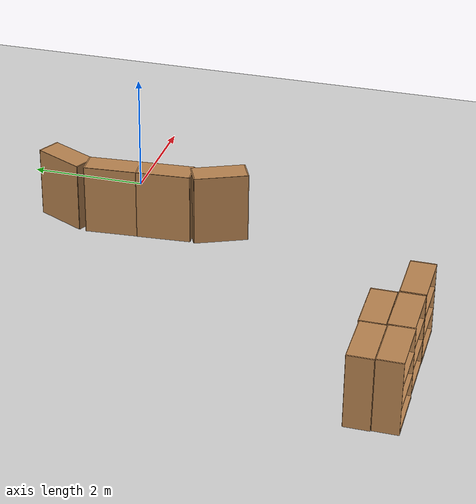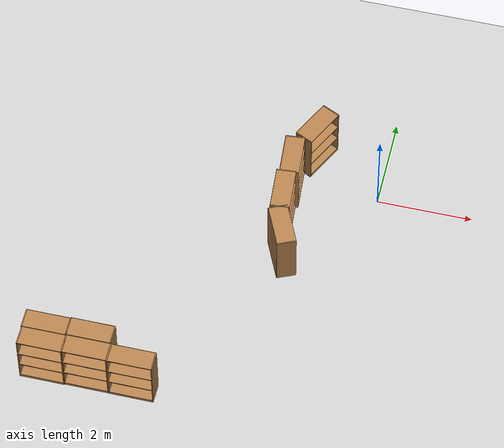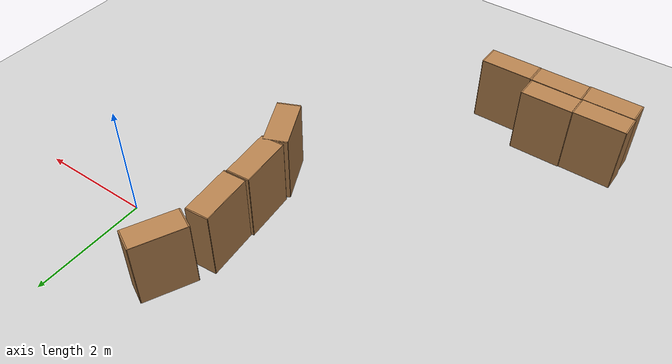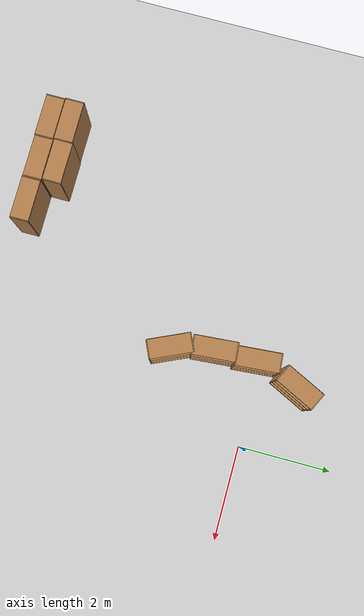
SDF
<sdf version="1.6">
 <world name="default">
  <light name="sun" type="directional">
   <pose>0 0 10 0 -0 0</pose>
   <diffuse>0.8 0.8 0.8 1</diffuse>
   <specular>0.1 0.1 0.1 1</specular>
   <attenuation>
    <range>1000</range>
    <constant>0.9</constant>
    <linear>0.01</linear>
    <quadratic>0.001</quadratic>
   </attenuation>
   <direction>-0.5 0.5 -1</direction>
  </light>
  <model name="ground_plane">
   <static>1</static>
   <link name="link">
    <collision name="collision">
     <geometry><plane><normal>0 0 1</normal><size>100 100</size></plane></geometry>
     <surface><friction><ode><mu>100</mu><mu2>50</mu2></ode></friction></surface>
    </collision>
    <visual name="visual">
     <cast_shadows>0</cast_shadows>
     <geometry><plane><normal>0 0 1</normal><size>100 100</size></plane></geometry>
     <material>
      <script><uri>file://media/materials/scripts/gazebo.material</uri><name>Gazebo/Grey</name></script>
     </material>
    </visual>
   </link>
  </model>
  <gravity>0 0 -9.8</gravity>
  <magnetic_field>6e-06 2.3e-05 -4.2e-05</magnetic_field>
  <atmosphere type="adiabatic"/>
  <physics name="default_physics" default="0" type="ode">
   <max_step_size>0.001</max_step_size>
   <real_time_factor>1</real_time_factor>
   <real_time_update_rate>1000</real_time_update_rate>
  </physics>
  <scene><ambient>0.4 0.4 0.4 1</ambient><background>0.7 0.7 0.7 1</background><shadows>1</shadows></scene>
  <spherical_coordinates>
   <surface_model>EARTH_WGS84</surface_model>
   <latitude_deg>0</latitude_deg>
   <longitude_deg>0</longitude_deg>
   <elevation>0</elevation>
   <heading_deg>0</heading_deg>
  </spherical_coordinates>
  <audio><device>default</device></audio>
  <model name="bookshelf_clone">
   <static>1</static>
   <link name="link">
    <inertial><mass>1</mass></inertial>
    <collision name="back">
     <pose>0 0.005 0.6 0 -0 0</pose>
     <geometry><box><size>0.9 0.01 1.2</size></box></geometry>
    </collision>
    <visual name="visual1">
     <pose>0 0.005 0.6 0 -0 0</pose>
     <geometry><box><size>0.9 0.01 1.2</size></box></geometry>
     <material>
      <script><uri>file://media/materials/scripts/gazebo.material</uri><name>Gazebo/Wood</name></script>
     </material>
    </visual>
    <collision name="left_side">
     <pose>0.45 -0.195 0.6 0 -0 0</pose>
     <geometry><box><size>0.02 0.4 1.2</size></box></geometry>
    </collision>
    <visual name="visual2">
     <pose>0.45 -0.195 0.6 0 -0 0</pose>
     <geometry><box><size>0.02 0.4 1.2</size></box></geometry>
     <material>
      <script><uri>file://media/materials/scripts/gazebo.material</uri><name>Gazebo/Wood</name></script>
     </material>
    </visual>
    <collision name="right_side">
     <pose>-0.45 -0.195 0.6 0 -0 0</pose>
     <geometry><box><size>0.02 0.4 1.2</size></box></geometry>
    </collision>
    <visual name="visual3">
     <pose>-0.45 -0.195 0.6 0 -0 0</pose>
     <geometry><box><size>0.02 0.4 1.2</size></box></geometry>
     <material>
      <script><uri>file://media/materials/scripts/gazebo.material</uri><name>Gazebo/Wood</name></script>
     </material>
    </visual>
    <collision name="bottom">
     <pose>0 -0.195 0.03 0 -0 0</pose>
     <geometry><box><size>0.88 0.4 0.06</size></box></geometry>
    </collision>
    <visual name="visual4">
     <pose>0 -0.195 0.03 0 -0 0</pose>
     <geometry><box><size>0.88 0.4 0.06</size></box></geometry>
     <material>
      <script><uri>file://media/materials/scripts/gazebo.material</uri><name>Gazebo/Wood</name></script>
     </material>
    </visual>
    <collision name="top">
     <pose>0 -0.195 1.19 0 -0 0</pose>
     <geometry><box><size>0.88 0.4 0.02</size></box></geometry>
    </collision>
    <visual name="visual5">
     <pose>0 -0.195 1.19 0 -0 0</pose>
     <geometry><box><size>0.88 0.4 0.02</size></box></geometry>
     <material>
      <script><uri>file://media/materials/scripts/gazebo.material</uri><name>Gazebo/Wood</name></script>
     </material>
    </visual>
    <collision name="low_shelf">
     <pose>0 -0.195 0.43 0 -0 0</pose>
     <geometry><box><size>0.88 0.4 0.02</size></box></geometry>
    </collision>
    <visual name="visual6">
     <pose>0 -0.195 0.43 0 -0 0</pose>
     <geometry><box><size>0.88 0.4 0.02</size></box></geometry>
     <material>
      <script><uri>file://media/materials/scripts/gazebo.material</uri><name>Gazebo/Wood</name></script>
     </material>
    </visual>
    <collision name="high_shelf">
     <pose>0 -0.195 0.8 0 -0 0</pose>
     <geometry><box><size>0.88 0.4 0.02</size></box></geometry>
    </collision>
    <visual name="visual7">
     <pose>0 -0.195 0.8 0 -0 0</pose>
     <geometry><box><size>0.88 0.4 0.02</size></box></geometry>
     <material>
      <script><uri>file://media/materials/scripts/gazebo.material</uri><name>Gazebo/Wood</name></script>
     </material>
    </visual>
   </link>
   <pose>-5.58377 -5.40152 0 0 -0 0</pose>
  </model>
  <model name="bookshelf_clone_0">
   <static>1</static>
   <link name="link">
    <inertial><mass>1</mass></inertial>
    <collision name="back">
     <pose>0 0.005 0.6 0 -0 0</pose>
     <geometry><box><size>0.9 0.01 1.2</size></box></geometry>
    </collision>
    <visual name="visual1">
     <pose>0 0.005 0.6 0 -0 0</pose>
     <geometry><box><size>0.9 0.01 1.2</size></box></geometry>
     <material>
      <script><uri>file://media/materials/scripts/gazebo.material</uri><name>Gazebo/Wood</name></script>
     </material>
    </visual>
    <collision name="left_side">
     <pose>0.45 -0.195 0.6 0 -0 0</pose>
     <geometry><box><size>0.02 0.4 1.2</size></box></geometry>
    </collision>
    <visual name="visual2">
     <pose>0.45 -0.195 0.6 0 -0 0</pose>
     <geometry><box><size>0.02 0.4 1.2</size></box></geometry>
     <material>
      <script><uri>file://media/materials/scripts/gazebo.material</uri><name>Gazebo/Wood</name></script>
     </material>
    </visual>
    <collision name="right_side">
     <pose>-0.45 -0.195 0.6 0 -0 0</pose>
     <geometry><box><size>0.02 0.4 1.2</size></box></geometry>
    </collision>
    <visual name="visual3">
     <pose>-0.45 -0.195 0.6 0 -0 0</pose>
     <geometry><box><size>0.02 0.4 1.2</size></box></geometry>
     <material>
      <script><uri>file://media/materials/scripts/gazebo.material</uri><name>Gazebo/Wood</name></script>
     </material>
    </visual>
    <collision name="bottom">
     <pose>0 -0.195 0.03 0 -0 0</pose>
     <geometry><box><size>0.88 0.4 0.06</size></box></geometry>
    </collision>
    <visual name="visual4">
     <pose>0 -0.195 0.03 0 -0 0</pose>
     <geometry><box><size>0.88 0.4 0.06</size></box></geometry>
     <material>
      <script><uri>file://media/materials/scripts/gazebo.material</uri><name>Gazebo/Wood</name></script>
     </material>
    </visual>
    <collision name="top">
     <pose>0 -0.195 1.19 0 -0 0</pose>
     <geometry><box><size>0.88 0.4 0.02</size></box></geometry>
    </collision>
    <visual name="visual5">
     <pose>0 -0.195 1.19 0 -0 0</pose>
     <geometry><box><size>0.88 0.4 0.02</size></box></geometry>
     <material>
      <script><uri>file://media/materials/scripts/gazebo.material</uri><name>Gazebo/Wood</name></script>
     </material>
    </visual>
    <collision name="low_shelf">
     <pose>0 -0.195 0.43 0 -0 0</pose>
     <geometry><box><size>0.88 0.4 0.02</size></box></geometry>
    </collision>
    <visual name="visual6">
     <pose>0 -0.195 0.43 0 -0 0</pose>
     <geometry><box><size>0.88 0.4 0.02</size></box></geometry>
     <material>
      <script><uri>file://media/materials/scripts/gazebo.material</uri><name>Gazebo/Wood</name></script>
     </material>
    </visual>
    <collision name="high_shelf">
     <pose>0 -0.195 0.8 0 -0 0</pose>
     <geometry><box><size>0.88 0.4 0.02</size></box></geometry>
    </collision>
    <visual name="visual7">
     <pose>0 -0.195 0.8 0 -0 0</pose>
     <geometry><box><size>0.88 0.4 0.02</size></box></geometry>
     <material>
      <script><uri>file://media/materials/scripts/gazebo.material</uri><name>Gazebo/Wood</name></script>
     </material>
    </visual>
   </link>
   <pose>-4.67596 -5.39041 0 0 -0 0</pose>
  </model>
  <model name="bookshelf_clone_1">
   <static>1</static>
   <link name="link">
    <inertial><mass>1</mass></inertial>
    <collision name="back">
     <pose>0 0.005 0.6 0 -0 0</pose>
     <geometry><box><size>0.9 0.01 1.2</size></box></geometry>
    </collision>
    <visual name="visual1">
     <pose>0 0.005 0.6 0 -0 0</pose>
     <geometry><box><size>0.9 0.01 1.2</size></box></geometry>
     <material>
      <script><uri>file://media/materials/scripts/gazebo.material</uri><name>Gazebo/Wood</name></script>
     </material>
    </visual>
    <collision name="left_side">
     <pose>0.45 -0.195 0.6 0 -0 0</pose>
     <geometry><box><size>0.02 0.4 1.2</size></box></geometry>
    </collision>
    <visual name="visual2">
     <pose>0.45 -0.195 0.6 0 -0 0</pose>
     <geometry><box><size>0.02 0.4 1.2</size></box></geometry>
     <material>
      <script><uri>file://media/materials/scripts/gazebo.material</uri><name>Gazebo/Wood</name></script>
     </material>
    </visual>
    <collision name="right_side">
     <pose>-0.45 -0.195 0.6 0 -0 0</pose>
     <geometry><box><size>0.02 0.4 1.2</size></box></geometry>
    </collision>
    <visual name="visual3">
     <pose>-0.45 -0.195 0.6 0 -0 0</pose>
     <geometry><box><size>0.02 0.4 1.2</size></box></geometry>
     <material>
      <script><uri>file://media/materials/scripts/gazebo.material</uri><name>Gazebo/Wood</name></script>
     </material>
    </visual>
    <collision name="bottom">
     <pose>0 -0.195 0.03 0 -0 0</pose>
     <geometry><box><size>0.88 0.4 0.06</size></box></geometry>
    </collision>
    <visual name="visual4">
     <pose>0 -0.195 0.03 0 -0 0</pose>
     <geometry><box><size>0.88 0.4 0.06</size></box></geometry>
     <material>
      <script><uri>file://media/materials/scripts/gazebo.material</uri><name>Gazebo/Wood</name></script>
     </material>
    </visual>
    <collision name="top">
     <pose>0 -0.195 1.19 0 -0 0</pose>
     <geometry><box><size>0.88 0.4 0.02</size></box></geometry>
    </collision>
    <visual name="visual5">
     <pose>0 -0.195 1.19 0 -0 0</pose>
     <geometry><box><size>0.88 0.4 0.02</size></box></geometry>
     <material>
      <script><uri>file://media/materials/scripts/gazebo.material</uri><name>Gazebo/Wood</name></script>
     </material>
    </visual>
    <collision name="low_shelf">
     <pose>0 -0.195 0.43 0 -0 0</pose>
     <geometry><box><size>0.88 0.4 0.02</size></box></geometry>
    </collision>
    <visual name="visual6">
     <pose>0 -0.195 0.43 0 -0 0</pose>
     <geometry><box><size>0.88 0.4 0.02</size></box></geometry>
     <material>
      <script><uri>file://media/materials/scripts/gazebo.material</uri><name>Gazebo/Wood</name></script>
     </material>
    </visual>
    <collision name="high_shelf">
     <pose>0 -0.195 0.8 0 -0 0</pose>
     <geometry><box><size>0.88 0.4 0.02</size></box></geometry>
    </collision>
    <visual name="visual7">
     <pose>0 -0.195 0.8 0 -0 0</pose>
     <geometry><box><size>0.88 0.4 0.02</size></box></geometry>
     <material>
      <script><uri>file://media/materials/scripts/gazebo.material</uri><name>Gazebo/Wood</name></script>
     </material>
    </visual>
   </link>
   <pose>-5.60077 -4.99106 0 0 -0 0</pose>
  </model>
  <model name="bookshelf_clone_2">
   <static>1</static>
   <link name="link">
    <inertial><mass>1</mass></inertial>
    <collision name="back">
     <pose>0 0.005 0.6 0 -0 0</pose>
     <geometry><box><size>0.9 0.01 1.2</size></box></geometry>
    </collision>
    <visual name="visual1">
     <pose>0 0.005 0.6 0 -0 0</pose>
     <geometry><box><size>0.9 0.01 1.2</size></box></geometry>
     <material>
      <script><uri>file://media/materials/scripts/gazebo.material</uri><name>Gazebo/Wood</name></script>
     </material>
    </visual>
    <collision name="left_side">
     <pose>0.45 -0.195 0.6 0 -0 0</pose>
     <geometry><box><size>0.02 0.4 1.2</size></box></geometry>
    </collision>
    <visual name="visual2">
     <pose>0.45 -0.195 0.6 0 -0 0</pose>
     <geometry><box><size>0.02 0.4 1.2</size></box></geometry>
     <material>
      <script><uri>file://media/materials/scripts/gazebo.material</uri><name>Gazebo/Wood</name></script>
     </material>
    </visual>
    <collision name="right_side">
     <pose>-0.45 -0.195 0.6 0 -0 0</pose>
     <geometry><box><size>0.02 0.4 1.2</size></box></geometry>
    </collision>
    <visual name="visual3">
     <pose>-0.45 -0.195 0.6 0 -0 0</pose>
     <geometry><box><size>0.02 0.4 1.2</size></box></geometry>
     <material>
      <script><uri>file://media/materials/scripts/gazebo.material</uri><name>Gazebo/Wood</name></script>
     </material>
    </visual>
    <collision name="bottom">
     <pose>0 -0.195 0.03 0 -0 0</pose>
     <geometry><box><size>0.88 0.4 0.06</size></box></geometry>
    </collision>
    <visual name="visual4">
     <pose>0 -0.195 0.03 0 -0 0</pose>
     <geometry><box><size>0.88 0.4 0.06</size></box></geometry>
     <material>
      <script><uri>file://media/materials/scripts/gazebo.material</uri><name>Gazebo/Wood</name></script>
     </material>
    </visual>
    <collision name="top">
     <pose>0 -0.195 1.19 0 -0 0</pose>
     <geometry><box><size>0.88 0.4 0.02</size></box></geometry>
    </collision>
    <visual name="visual5">
     <pose>0 -0.195 1.19 0 -0 0</pose>
     <geometry><box><size>0.88 0.4 0.02</size></box></geometry>
     <material>
      <script><uri>file://media/materials/scripts/gazebo.material</uri><name>Gazebo/Wood</name></script>
     </material>
    </visual>
    <collision name="low_shelf">
     <pose>0 -0.195 0.43 0 -0 0</pose>
     <geometry><box><size>0.88 0.4 0.02</size></box></geometry>
    </collision>
    <visual name="visual6">
     <pose>0 -0.195 0.43 0 -0 0</pose>
     <geometry><box><size>0.88 0.4 0.02</size></box></geometry>
     <material>
      <script><uri>file://media/materials/scripts/gazebo.material</uri><name>Gazebo/Wood</name></script>
     </material>
    </visual>
    <collision name="high_shelf">
     <pose>0 -0.195 0.8 0 -0 0</pose>
     <geometry><box><size>0.88 0.4 0.02</size></box></geometry>
    </collision>
    <visual name="visual7">
     <pose>0 -0.195 0.8 0 -0 0</pose>
     <geometry><box><size>0.88 0.4 0.02</size></box></geometry>
     <material>
      <script><uri>file://media/materials/scripts/gazebo.material</uri><name>Gazebo/Wood</name></script>
     </material>
    </visual>
   </link>
   <pose>-3.75928 -5.39438 0 0 -0 0</pose>
  </model>
  <model name="bookshelf_clone_3">
   <static>1</static>
   <link name="link">
    <inertial><mass>1</mass></inertial>
    <collision name="back">
     <pose>0 0.005 0.6 0 -0 0</pose>
     <geometry><box><size>0.9 0.01 1.2</size></box></geometry>
    </collision>
    <visual name="visual1">
     <pose>0 0.005 0.6 0 -0 0</pose>
     <geometry><box><size>0.9 0.01 1.2</size></box></geometry>
     <material>
      <script><uri>file://media/materials/scripts/gazebo.material</uri><name>Gazebo/Wood</name></script>
     </material>
    </visual>
    <collision name="left_side">
     <pose>0.45 -0.195 0.6 0 -0 0</pose>
     <geometry><box><size>0.02 0.4 1.2</size></box></geometry>
    </collision>
    <visual name="visual2">
     <pose>0.45 -0.195 0.6 0 -0 0</pose>
     <geometry><box><size>0.02 0.4 1.2</size></box></geometry>
     <material>
      <script><uri>file://media/materials/scripts/gazebo.material</uri><name>Gazebo/Wood</name></script>
     </material>
    </visual>
    <collision name="right_side">
     <pose>-0.45 -0.195 0.6 0 -0 0</pose>
     <geometry><box><size>0.02 0.4 1.2</size></box></geometry>
    </collision>
    <visual name="visual3">
     <pose>-0.45 -0.195 0.6 0 -0 0</pose>
     <geometry><box><size>0.02 0.4 1.2</size></box></geometry>
     <material>
      <script><uri>file://media/materials/scripts/gazebo.material</uri><name>Gazebo/Wood</name></script>
     </material>
    </visual>
    <collision name="bottom">
     <pose>0 -0.195 0.03 0 -0 0</pose>
     <geometry><box><size>0.88 0.4 0.06</size></box></geometry>
    </collision>
    <visual name="visual4">
     <pose>0 -0.195 0.03 0 -0 0</pose>
     <geometry><box><size>0.88 0.4 0.06</size></box></geometry>
     <material>
      <script><uri>file://media/materials/scripts/gazebo.material</uri><name>Gazebo/Wood</name></script>
     </material>
    </visual>
    <collision name="top">
     <pose>0 -0.195 1.19 0 -0 0</pose>
     <geometry><box><size>0.88 0.4 0.02</size></box></geometry>
    </collision>
    <visual name="visual5">
     <pose>0 -0.195 1.19 0 -0 0</pose>
     <geometry><box><size>0.88 0.4 0.02</size></box></geometry>
     <material>
      <script><uri>file://media/materials/scripts/gazebo.material</uri><name>Gazebo/Wood</name></script>
     </material>
    </visual>
    <collision name="low_shelf">
     <pose>0 -0.195 0.43 0 -0 0</pose>
     <geometry><box><size>0.88 0.4 0.02</size></box></geometry>
    </collision>
    <visual name="visual6">
     <pose>0 -0.195 0.43 0 -0 0</pose>
     <geometry><box><size>0.88 0.4 0.02</size></box></geometry>
     <material>
      <script><uri>file://media/materials/scripts/gazebo.material</uri><name>Gazebo/Wood</name></script>
     </material>
    </visual>
    <collision name="high_shelf">
     <pose>0 -0.195 0.8 0 -0 0</pose>
     <geometry><box><size>0.88 0.4 0.02</size></box></geometry>
    </collision>
    <visual name="visual7">
     <pose>0 -0.195 0.8 0 -0 0</pose>
     <geometry><box><size>0.88 0.4 0.02</size></box></geometry>
     <material>
      <script><uri>file://media/materials/scripts/gazebo.material</uri><name>Gazebo/Wood</name></script>
     </material>
    </visual>
   </link>
   <pose>-4.69769 -4.97635 0 0 -0 0</pose>
  </model>
  <model name="bookshelf_clone_7">
   <static>1</static>
   <link name="link">
    <inertial><mass>1</mass></inertial>
    <collision name="back">
     <pose>0 0.005 0.6 0 -0 0</pose>
     <geometry><box><size>0.9 0.01 1.2</size></box></geometry>
    </collision>
    <visual name="visual1">
     <pose>0 0.005 0.6 0 -0 0</pose>
     <geometry><box><size>0.9 0.01 1.2</size></box></geometry>
     <material>
      <script><uri>file://media/materials/scripts/gazebo.material</uri><name>Gazebo/Wood</name></script>
     </material>
    </visual>
    <collision name="left_side">
     <pose>0.45 -0.195 0.6 0 -0 0</pose>
     <geometry><box><size>0.02 0.4 1.2</size></box></geometry>
    </collision>
    <visual name="visual2">
     <pose>0.45 -0.195 0.6 0 -0 0</pose>
     <geometry><box><size>0.02 0.4 1.2</size></box></geometry>
     <material>
      <script><uri>file://media/materials/scripts/gazebo.material</uri><name>Gazebo/Wood</name></script>
     </material>
    </visual>
    <collision name="right_side">
     <pose>-0.45 -0.195 0.6 0 -0 0</pose>
     <geometry><box><size>0.02 0.4 1.2</size></box></geometry>
    </collision>
    <visual name="visual3">
     <pose>-0.45 -0.195 0.6 0 -0 0</pose>
     <geometry><box><size>0.02 0.4 1.2</size></box></geometry>
     <material>
      <script><uri>file://media/materials/scripts/gazebo.material</uri><name>Gazebo/Wood</name></script>
     </material>
    </visual>
    <collision name="bottom">
     <pose>0 -0.195 0.03 0 -0 0</pose>
     <geometry><box><size>0.88 0.4 0.06</size></box></geometry>
    </collision>
    <visual name="visual4">
     <pose>0 -0.195 0.03 0 -0 0</pose>
     <geometry><box><size>0.88 0.4 0.06</size></box></geometry>
     <material>
      <script><uri>file://media/materials/scripts/gazebo.material</uri><name>Gazebo/Wood</name></script>
     </material>
    </visual>
    <collision name="top">
     <pose>0 -0.195 1.19 0 -0 0</pose>
     <geometry><box><size>0.88 0.4 0.02</size></box></geometry>
    </collision>
    <visual name="visual5">
     <pose>0 -0.195 1.19 0 -0 0</pose>
     <geometry><box><size>0.88 0.4 0.02</size></box></geometry>
     <material>
      <script><uri>file://media/materials/scripts/gazebo.material</uri><name>Gazebo/Wood</name></script>
     </material>
    </visual>
    <collision name="low_shelf">
     <pose>0 -0.195 0.43 0 -0 0</pose>
     <geometry><box><size>0.88 0.4 0.02</size></box></geometry>
    </collision>
    <visual name="visual6">
     <pose>0 -0.195 0.43 0 -0 0</pose>
     <geometry><box><size>0.88 0.4 0.02</size></box></geometry>
     <material>
      <script><uri>file://media/materials/scripts/gazebo.material</uri><name>Gazebo/Wood</name></script>
     </material>
    </visual>
    <collision name="high_shelf">
     <pose>0 -0.195 0.8 0 -0 0</pose>
     <geometry><box><size>0.88 0.4 0.02</size></box></geometry>
    </collision>
    <visual name="visual7">
     <pose>0 -0.195 0.8 0 -0 0</pose>
     <geometry><box><size>0.88 0.4 0.02</size></box></geometry>
     <material>
      <script><uri>file://media/materials/scripts/gazebo.material</uri><name>Gazebo/Wood</name></script>
     </material>
    </visual>
   </link>
   <pose>-1.64433 0.887865 -0.001919 0 -0 1.11811</pose>
  </model>
  <model name="bookshelf_clone_7_clone">
   <static>1</static>
   <link name="link">
    <inertial><mass>1</mass></inertial>
    <collision name="back">
     <pose>0 0.005 0.6 0 -0 0</pose>
     <geometry><box><size>0.9 0.01 1.2</size></box></geometry>
    </collision>
    <visual name="visual1">
     <pose>0 0.005 0.6 0 -0 0</pose>
     <geometry><box><size>0.9 0.01 1.2</size></box></geometry>
     <material>
      <script><uri>file://media/materials/scripts/gazebo.material</uri><name>Gazebo/Wood</name></script>
     </material>
    </visual>
    <collision name="left_side">
     <pose>0.45 -0.195 0.6 0 -0 0</pose>
     <geometry><box><size>0.02 0.4 1.2</size></box></geometry>
    </collision>
    <visual name="visual2">
     <pose>0.45 -0.195 0.6 0 -0 0</pose>
     <geometry><box><size>0.02 0.4 1.2</size></box></geometry>
     <material>
      <script><uri>file://media/materials/scripts/gazebo.material</uri><name>Gazebo/Wood</name></script>
     </material>
    </visual>
    <collision name="right_side">
     <pose>-0.45 -0.195 0.6 0 -0 0</pose>
     <geometry><box><size>0.02 0.4 1.2</size></box></geometry>
    </collision>
    <visual name="visual3">
     <pose>-0.45 -0.195 0.6 0 -0 0</pose>
     <geometry><box><size>0.02 0.4 1.2</size></box></geometry>
     <material>
      <script><uri>file://media/materials/scripts/gazebo.material</uri><name>Gazebo/Wood</name></script>
     </material>
    </visual>
    <collision name="bottom">
     <pose>0 -0.195 0.03 0 -0 0</pose>
     <geometry><box><size>0.88 0.4 0.06</size></box></geometry>
    </collision>
    <visual name="visual4">
     <pose>0 -0.195 0.03 0 -0 0</pose>
     <geometry><box><size>0.88 0.4 0.06</size></box></geometry>
     <material>
      <script><uri>file://media/materials/scripts/gazebo.material</uri><name>Gazebo/Wood</name></script>
     </material>
    </visual>
    <collision name="top">
     <pose>0 -0.195 1.19 0 -0 0</pose>
     <geometry><box><size>0.88 0.4 0.02</size></box></geometry>
    </collision>
    <visual name="visual5">
     <pose>0 -0.195 1.19 0 -0 0</pose>
     <geometry><box><size>0.88 0.4 0.02</size></box></geometry>
     <material>
      <script><uri>file://media/materials/scripts/gazebo.material</uri><name>Gazebo/Wood</name></script>
     </material>
    </visual>
    <collision name="low_shelf">
     <pose>0 -0.195 0.43 0 -0 0</pose>
     <geometry><box><size>0.88 0.4 0.02</size></box></geometry>
    </collision>
    <visual name="visual6">
     <pose>0 -0.195 0.43 0 -0 0</pose>
     <geometry><box><size>0.88 0.4 0.02</size></box></geometry>
     <material>
      <script><uri>file://media/materials/scripts/gazebo.material</uri><name>Gazebo/Wood</name></script>
     </material>
    </visual>
    <collision name="high_shelf">
     <pose>0 -0.195 0.8 0 -0 0</pose>
     <geometry><box><size>0.88 0.4 0.02</size></box></geometry>
    </collision>
    <visual name="visual7">
     <pose>0 -0.195 0.8 0 -0 0</pose>
     <geometry><box><size>0.88 0.4 0.02</size></box></geometry>
     <material>
      <script><uri>file://media/materials/scripts/gazebo.material</uri><name>Gazebo/Wood</name></script>
     </material>
    </visual>
   </link>
   <pose>-1.98085 -0.155633 0.094879 0 -0 1.64995</pose>
  </model>
  <model name="bookshelf_clone_7_clone_0">
   <static>1</static>
   <link name="link">
    <inertial><mass>1</mass></inertial>
    <collision name="back">
     <pose>0 0.005 0.6 0 -0 0</pose>
     <geometry><box><size>0.9 0.01 1.2</size></box></geometry>
    </collision>
    <visual name="visual1">
     <pose>0 0.005 0.6 0 -0 0</pose>
     <geometry><box><size>0.9 0.01 1.2</size></box></geometry>
     <material>
      <script><uri>file://media/materials/scripts/gazebo.material</uri><name>Gazebo/Wood</name></script>
     </material>
    </visual>
    <collision name="left_side">
     <pose>0.45 -0.195 0.6 0 -0 0</pose>
     <geometry><box><size>0.02 0.4 1.2</size></box></geometry>
    </collision>
    <visual name="visual2">
     <pose>0.45 -0.195 0.6 0 -0 0</pose>
     <geometry><box><size>0.02 0.4 1.2</size></box></geometry>
     <material>
      <script><uri>file://media/materials/scripts/gazebo.material</uri><name>Gazebo/Wood</name></script>
     </material>
    </visual>
    <collision name="right_side">
     <pose>-0.45 -0.195 0.6 0 -0 0</pose>
     <geometry><box><size>0.02 0.4 1.2</size></box></geometry>
    </collision>
    <visual name="visual3">
     <pose>-0.45 -0.195 0.6 0 -0 0</pose>
     <geometry><box><size>0.02 0.4 1.2</size></box></geometry>
     <material>
      <script><uri>file://media/materials/scripts/gazebo.material</uri><name>Gazebo/Wood</name></script>
     </material>
    </visual>
    <collision name="bottom">
     <pose>0 -0.195 0.03 0 -0 0</pose>
     <geometry><box><size>0.88 0.4 0.06</size></box></geometry>
    </collision>
    <visual name="visual4">
     <pose>0 -0.195 0.03 0 -0 0</pose>
     <geometry><box><size>0.88 0.4 0.06</size></box></geometry>
     <material>
      <script><uri>file://media/materials/scripts/gazebo.material</uri><name>Gazebo/Wood</name></script>
     </material>
    </visual>
    <collision name="top">
     <pose>0 -0.195 1.19 0 -0 0</pose>
     <geometry><box><size>0.88 0.4 0.02</size></box></geometry>
    </collision>
    <visual name="visual5">
     <pose>0 -0.195 1.19 0 -0 0</pose>
     <geometry><box><size>0.88 0.4 0.02</size></box></geometry>
     <material>
      <script><uri>file://media/materials/scripts/gazebo.material</uri><name>Gazebo/Wood</name></script>
     </material>
    </visual>
    <collision name="low_shelf">
     <pose>0 -0.195 0.43 0 -0 0</pose>
     <geometry><box><size>0.88 0.4 0.02</size></box></geometry>
    </collision>
    <visual name="visual6">
     <pose>0 -0.195 0.43 0 -0 0</pose>
     <geometry><box><size>0.88 0.4 0.02</size></box></geometry>
     <material>
      <script><uri>file://media/materials/scripts/gazebo.material</uri><name>Gazebo/Wood</name></script>
     </material>
    </visual>
    <collision name="high_shelf">
     <pose>0 -0.195 0.8 0 -0 0</pose>
     <geometry><box><size>0.88 0.4 0.02</size></box></geometry>
    </collision>
    <visual name="visual7">
     <pose>0 -0.195 0.8 0 -0 0</pose>
     <geometry><box><size>0.88 0.4 0.02</size></box></geometry>
     <material>
      <script><uri>file://media/materials/scripts/gazebo.material</uri><name>Gazebo/Wood</name></script>
     </material>
    </visual>
   </link>
   <pose>-1.96461 -1.05445 0.124158 0 -0 1.64995</pose>
  </model>
  <model name="bookshelf_clone_7_clone_0_clone">
   <static>1</static>
   <link name="link">
    <inertial><mass>1</mass></inertial>
    <collision name="back">
     <pose>0 0.005 0.6 0 -0 0</pose>
     <geometry><box><size>0.9 0.01 1.2</size></box></geometry>
    </collision>
    <visual name="visual1">
     <pose>0 0.005 0.6 0 -0 0</pose>
     <geometry><box><size>0.9 0.01 1.2</size></box></geometry>
     <material>
      <script><uri>file://media/materials/scripts/gazebo.material</uri><name>Gazebo/Wood</name></script>
     </material>
    </visual>
    <collision name="left_side">
     <pose>0.45 -0.195 0.6 0 -0 0</pose>
     <geometry><box><size>0.02 0.4 1.2</size></box></geometry>
    </collision>
    <visual name="visual2">
     <pose>0.45 -0.195 0.6 0 -0 0</pose>
     <geometry><box><size>0.02 0.4 1.2</size></box></geometry>
     <material>
      <script><uri>file://media/materials/scripts/gazebo.material</uri><name>Gazebo/Wood</name></script>
     </material>
    </visual>
    <collision name="right_side">
     <pose>-0.45 -0.195 0.6 0 -0 0</pose>
     <geometry><box><size>0.02 0.4 1.2</size></box></geometry>
    </collision>
    <visual name="visual3">
     <pose>-0.45 -0.195 0.6 0 -0 0</pose>
     <geometry><box><size>0.02 0.4 1.2</size></box></geometry>
     <material>
      <script><uri>file://media/materials/scripts/gazebo.material</uri><name>Gazebo/Wood</name></script>
     </material>
    </visual>
    <collision name="bottom">
     <pose>0 -0.195 0.03 0 -0 0</pose>
     <geometry><box><size>0.88 0.4 0.06</size></box></geometry>
    </collision>
    <visual name="visual4">
     <pose>0 -0.195 0.03 0 -0 0</pose>
     <geometry><box><size>0.88 0.4 0.06</size></box></geometry>
     <material>
      <script><uri>file://media/materials/scripts/gazebo.material</uri><name>Gazebo/Wood</name></script>
     </material>
    </visual>
    <collision name="top">
     <pose>0 -0.195 1.19 0 -0 0</pose>
     <geometry><box><size>0.88 0.4 0.02</size></box></geometry>
    </collision>
    <visual name="visual5">
     <pose>0 -0.195 1.19 0 -0 0</pose>
     <geometry><box><size>0.88 0.4 0.02</size></box></geometry>
     <material>
      <script><uri>file://media/materials/scripts/gazebo.material</uri><name>Gazebo/Wood</name></script>
     </material>
    </visual>
    <collision name="low_shelf">
     <pose>0 -0.195 0.43 0 -0 0</pose>
     <geometry><box><size>0.88 0.4 0.02</size></box></geometry>
    </collision>
    <visual name="visual6">
     <pose>0 -0.195 0.43 0 -0 0</pose>
     <geometry><box><size>0.88 0.4 0.02</size></box></geometry>
     <material>
      <script><uri>file://media/materials/scripts/gazebo.material</uri><name>Gazebo/Wood</name></script>
     </material>
    </visual>
    <collision name="high_shelf">
     <pose>0 -0.195 0.8 0 -0 0</pose>
     <geometry><box><size>0.88 0.4 0.02</size></box></geometry>
    </collision>
    <visual name="visual7">
     <pose>0 -0.195 0.8 0 -0 0</pose>
     <geometry><box><size>0.88 0.4 0.02</size></box></geometry>
     <material>
      <script><uri>file://media/materials/scripts/gazebo.material</uri><name>Gazebo/Wood</name></script>
     </material>
    </visual>
   </link>
   <pose>-1.76592 -1.99453 0.124158 0 -0 1.9976</pose>
  </model>
 </world>
</sdf>
